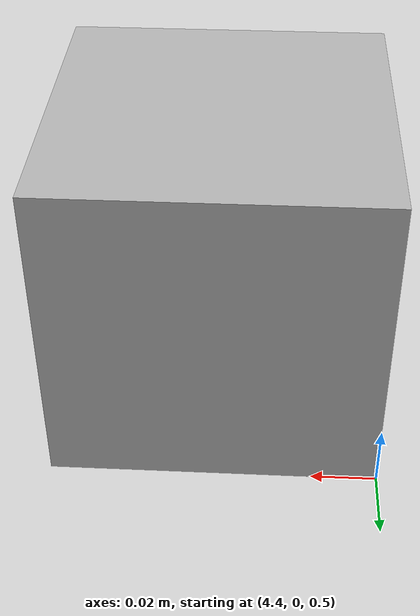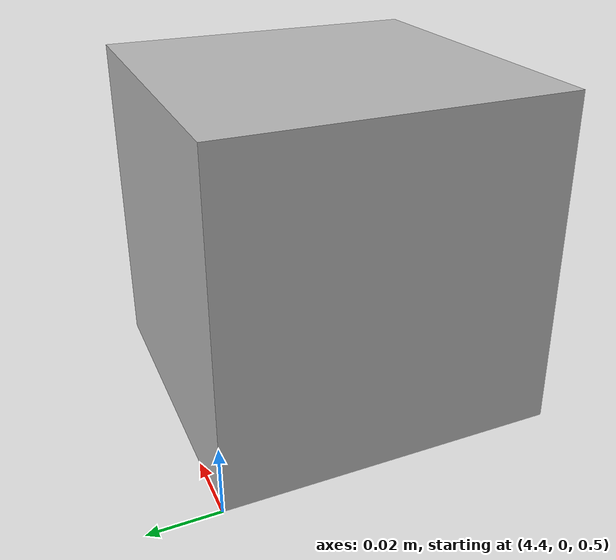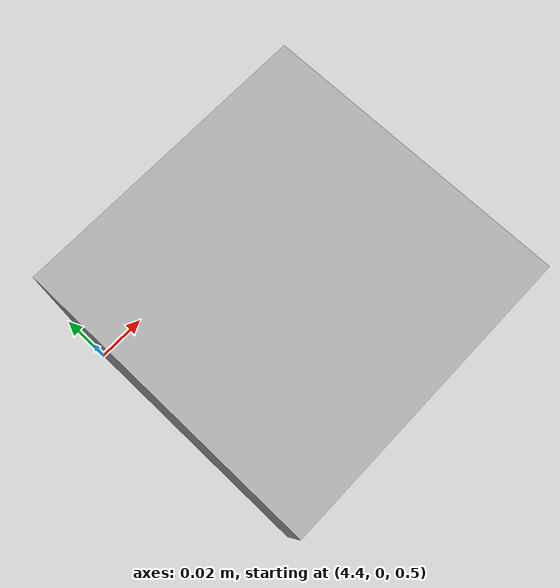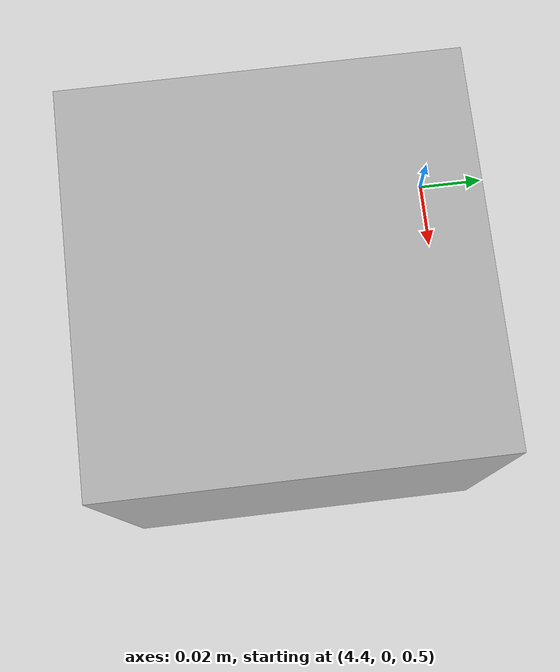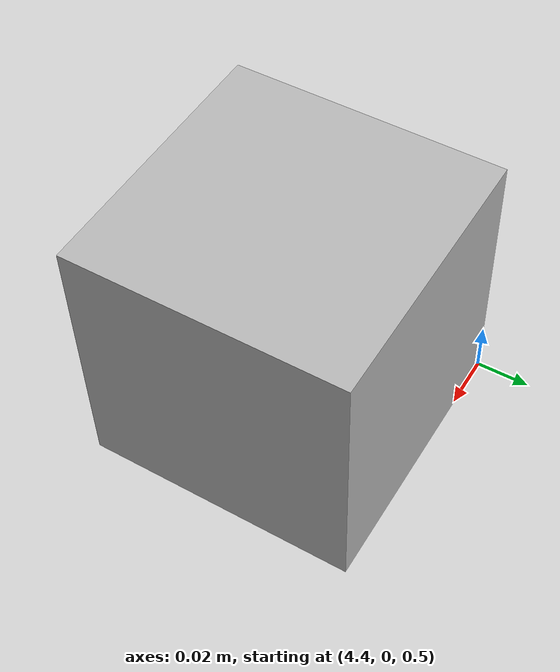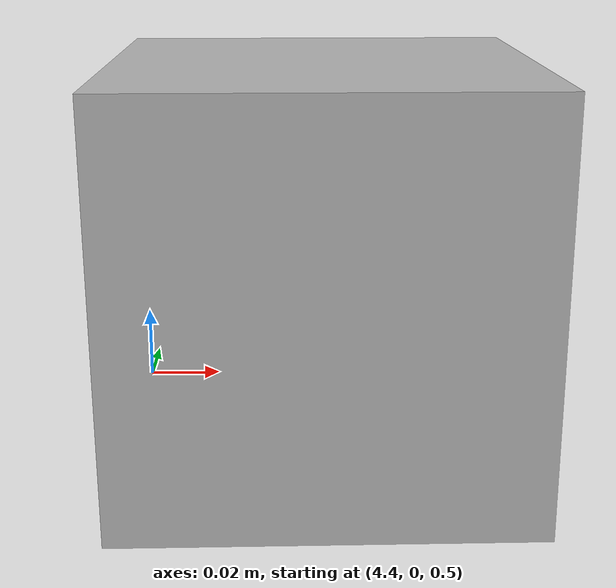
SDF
<?xml version="1.0"?>
<sdf version="1.8">
  <world name="arm_simulation">
    <physics name="1ms" type="ignored">
      <max_step_size>0.001</max_step_size>
      <real_time_factor>1.0</real_time_factor>
    </physics>
    <plugin
      filename="gz-sim-physics-system"
      name="gz::sim::systems::Physics">
    </plugin>
    <plugin
      filename="gz-sim-user-commands-system"
      name="gz::sim::systems::UserCommands">
    </plugin>
    <plugin
      filename="gz-sim-scene-broadcaster-system"
      name="gz::sim::systems::SceneBroadcaster">
    </plugin>
    <plugin
        filename="gz-sim-sensors-system"
        name="gz::sim::systems::Sensors">
        <render_engine>ogre2</render_engine>
    </plugin>
    <gui fullscreen="0">
      <!-- 3D scene -->
      <plugin filename="MinimalScene" name="3D View">
        <gz-gui>
          <title>3D View</title>
          <property type="bool" key="showTitleBar">false</property>
          <property type="string" key="state">docked</property>
        </gz-gui>

        <engine>ogre2</engine>
        <scene>scene</scene>
        <ambient_light>0.4 0.4 0.4</ambient_light>
        <background_color>0.8 0.8 0.8</background_color>
        <camera_pose>-6 0 6 0 0.5 0</camera_pose>
        <camera_clip>
          <near>0.25</near>
          <far>25000</far>
        </camera_clip>
      </plugin>
      <plugin filename="GzSceneManager" name="Scene Manager">
        <gz-gui>
          <property key="resizable" type="bool">false</property>
          <property key="width" type="double">5</property>
          <property key="height" type="double">5</property>
          <property key="state" type="string">floating</property>
          <property key="showTitleBar" type="bool">false</property>
        </gz-gui>
      </plugin>
      <plugin filename="InteractiveViewControl" name="Interactive View Control">
        <gz-gui>
          <property key="resizable" type="bool">false</property>
        </gz-gui>
      </plugin>
      <plugin filename="WorldControl" name="World control">
        <gz-gui>
          <title>World control</title>
          <property type="bool" key="showTitleBar">false</property>
          <property type="bool" key="resizable">false</property>
          <property type="double" key="height">72</property>
          <property type="double" key="width">121</property>
          <property type="double" key="z">1</property>

          <property type="string" key="state">floating</property>
          <anchors target="3D View">
            <line own="left" target="left"/>
            <line own="bottom" target="bottom"/>
          </anchors>
        </gz-gui>

        <play_pause>true</play_pause>
        <step>true</step>
        <start_paused>true</start_paused>
        <service>/world/world_demo/control</service>
        <stats_topic>/world/world_demo/stats</stats_topic>
      </plugin>
      <plugin filename="WorldStats" name="World stats">
        <gz-gui>
          <title>World stats</title>
          <property type="bool" key="showTitleBar">false</property>
          <property type="bool" key="resizable">false</property>
          <property type="double" key="height">110</property>
          <property type="double" key="width">290</property>
          <property type="double" key="z">1</property>

          <property type="string" key="state">floating</property>
          <anchors target="3D View">
            <line own="right" target="right"/>
            <line own="bottom" target="bottom"/>
          </anchors>
        </gz-gui>

        <sim_time>true</sim_time>
        <real_time>true</real_time>
        <real_time_factor>true</real_time_factor>
        <iterations>true</iterations>
        <topic>/world/world_demo/stats</topic>

      </plugin>
    </gui>

    <light type="directional" name="sun">
      <cast_shadows>true</cast_shadows>
      <pose>0 0 10 0 0 0</pose>
      <diffuse>0.8 0.8 0.8 1</diffuse>
      <specular>0.2 0.2 0.2 1</specular>
      <attenuation>
        <range>1000</range>
        <constant>0.9</constant>
        <linear>0.01</linear>
        <quadratic>0.001</quadratic>
      </attenuation>
      <direction>-0.5 0.1 -0.9</direction>
    </light>

    <model name="ground_plane">
      <static>true</static>
      <link name="link">
        <collision name="collision">
          <geometry>
            <plane>
              <normal>0 0 1</normal>
            </plane>
          </geometry>
        </collision>
        <visual name="visual">
        <geometry>
          <plane>
            <normal>0 0 1</normal>
            <size>100 100</size>
          </plane>
        </geometry>
        <material>
          <ambient>0.8 0.8 0.8 1</ambient>
          <diffuse>0.8 0.8 0.8 1</diffuse>
          <specular>0.8 0.8 0.8 1</specular>
        </material>
        </visual>
      </link>
    </model>

    <model name="thermal_camera_8bit">
        <pose>4.5 0 0.5 0.0 0.0 3.14</pose>
        <link name="link">
            <pose>0.05 0.05 0.05 0 0 0</pose>
            <collision name="collision">
            <geometry>
                <box>
                <size>0.1 0.1 0.1</size>
                </box>
            </geometry>
            </collision>
            <visual name="visual">
            <geometry>
                <box>
                <size>0.1 0.1 0.1</size>
                </box>
            </geometry>
            </visual>
            <sensor name="thermal_camera_8bit" type="thermal">
                <camera>
                    <horizontal_fov>1.047</horizontal_fov>
                    <image>
                        <width>320</width>
                        <height>240</height>
                        <format>L8</format>
                    </image>
                        <clip>
                        <near>0.1</near>
                        <far>100</far>
                    </clip>
                </camera>
                <always_on>1</always_on>
                <update_rate>30</update_rate>
                <visualize>true</visualize>
                <topic>thermal_camera_8bit/image</topic>
                <plugin
                    filename="gz-sim-thermal-sensor-system" name="gz::sim::systems::ThermalSensor">
                    <min_temp>253.15</min_temp>
                    <max_temp>673.15</max_temp>
                    <resolution>3.0</resolution>
                </plugin>
            </sensor>
        </link>
        <static>true</static>
        </model>
  </world>
</sdf>
